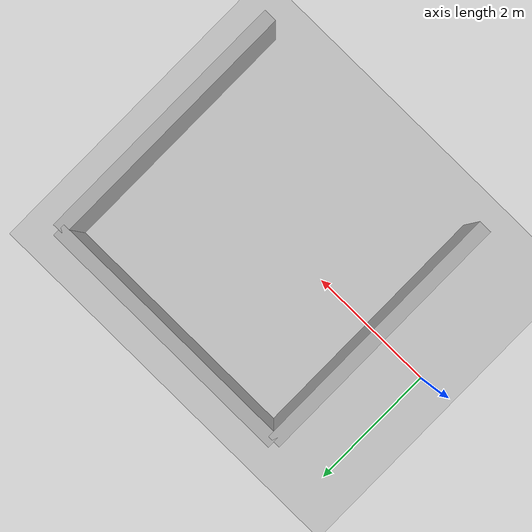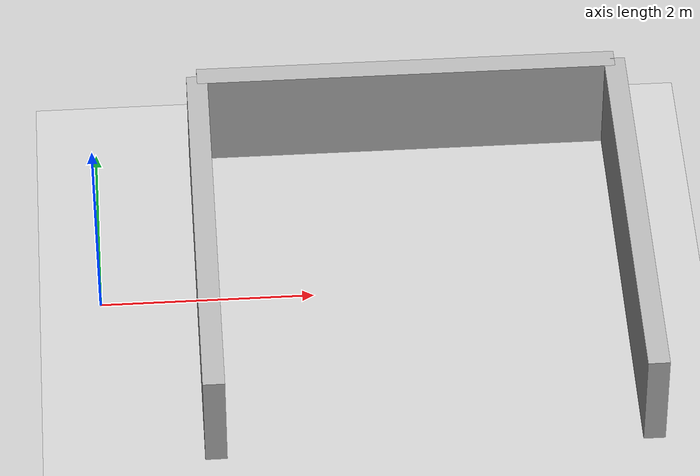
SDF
<?xml version="1.0" ?>
<sdf version="1.8">

  <world name="wall_maze_world">

    <include>
      <uri>model://sun</uri>
    </include>

    <include>
      <uri>model://ground_plane</uri>
    </include>

    <!-- Wall template -->
    <model name="wall_1">
      <static>true</static>
      <pose>1 0 0.5 0 0 0</pose>
      <link name="link">
        <collision name="collision">
          <geometry>
            <box>
              <size>0.2 4 1</size>
            </box>
          </geometry>
        </collision>
        <visual name="visual">
          <geometry>
            <box>
              <size>0.2 4 1</size>
            </box>
          </geometry>
          <material>
            <ambient>0.7 0.7 0.7 1</ambient>
            <diffuse>0.7 0.7 0.7 1</diffuse>
          </material>
        </visual>
      </link>
    </model>

    <model name="wall_2">
      <static>true</static>
      <pose>3 2 0.5 0 0 1.57</pose>
      <link name="link">
        <collision name="collision">
          <geometry>
            <box>
              <size>0.2 4 1</size>
            </box>
          </geometry>
        </collision>
        <visual name="visual">
          <geometry>
            <box>
              <size>0.2 4 1</size>
            </box>
          </geometry>
          <material>
            <ambient>0.7 0.7 0.7 1</ambient>
            <diffuse>0.7 0.7 0.7 1</diffuse>
          </material>
        </visual>
      </link>
    </model>

    <model name="wall_3">
      <static>true</static>
      <pose>5 0 0.5 0 0 0</pose>
      <link name="link">
        <collision name="collision">
          <geometry>
            <box>
              <size>0.2 4 1</size>
            </box>
          </geometry>
        </collision>
        <visual name="visual">
          <geometry>
            <box>
              <size>0.2 4 1</size>
            </box>
          </geometry>
          <material>
            <ambient>0.7 0.7 0.7 1</ambient>
            <diffuse>0.7 0.7 0.7 1</diffuse>
          </material>
        </visual>
      </link>
    </model>

  </world>
</sdf>
